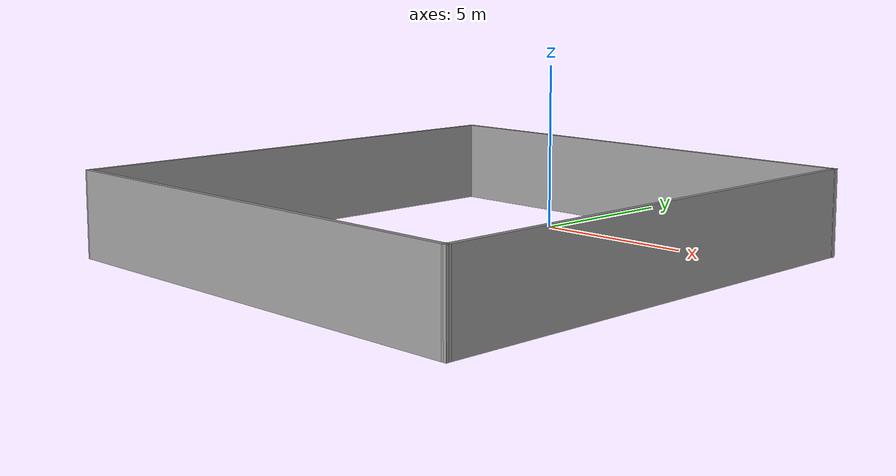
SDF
<?xml version='1.0'?>
<sdf version='1.6'>
  <model name='closed'>
    <pose frame=''>1.47122 -5.19193 0 0 -0 0</pose>
    <link name='Wall_44'>
      <collision name='Wall_44_Collision'>
        <geometry>
          <box>
            <size>15.1124 0.15 2.5</size>
          </box>
        </geometry>
        <pose frame=''>0 0 1.25 0 -0 0</pose>
      </collision>
      <visual name='Wall_44_Visual'>
        <pose frame=''>0 0 1.25 0 -0 0</pose>
        <geometry>
          <box>
            <size>15.1124 0.15 2.5</size>
          </box>
        </geometry>
        <material>
          <script>
            <uri>file://media/materials/scripts/gazebo.material</uri>
            <name>Gazebo/Grey</name>
          </script>
          <ambient>0 0 0 1</ambient>
        </material>
        <meta>
          <layer>0</layer>
        </meta>
      </visual>
      <pose frame=''>7.175 0 0 0 -0 -1.55379</pose>
    </link>
    <link name='Wall_45'>
      <collision name='Wall_45_Collision'>
        <geometry>
          <box>
            <size>14.5 0.15 2.5</size>
          </box>
        </geometry>
        <pose frame=''>0 0 1.25 0 -0 0</pose>
      </collision>
      <visual name='Wall_45_Visual'>
        <pose frame=''>0 0 1.25 0 -0 0</pose>
        <geometry>
          <box>
            <size>14.5 0.15 2.5</size>
          </box>
        </geometry>
        <material>
          <script>
            <uri>file://media/materials/scripts/gazebo.material</uri>
            <name>Gazebo/Grey</name>
          </script>
          <ambient>0 0 0 1</ambient>
        </material>
        <meta>
          <layer>0</layer>
        </meta>
      </visual>
      <pose frame=''>0.127219 -7.48046 0 0 -0 3.14159</pose>
    </link>
    <link name='Wall_46'>
      <collision name='Wall_46_Collision'>
        <geometry>
          <box>
            <size>15.1124 0.15 2.5</size>
          </box>
        </geometry>
        <pose frame=''>0 0 1.25 0 -0 0</pose>
      </collision>
      <visual name='Wall_46_Visual'>
        <pose frame=''>0 0 1.25 0 -0 0</pose>
        <geometry>
          <box>
            <size>15.1124 0.15 2.5</size>
          </box>
        </geometry>
        <material>
          <script>
            <uri>file://media/materials/scripts/gazebo.material</uri>
            <name>Gazebo/Grey</name>
          </script>
          <ambient>0 0 0 1</ambient>
        </material>
        <meta>
          <layer>0</layer>
        </meta>
      </visual>
      <pose frame=''>-7.175 0 0 0 -0 1.5878</pose>
    </link>
    <link name='Wall_47'>
      <collision name='Wall_47_Collision'>
        <geometry>
          <box>
            <size>14.5 0.15 2.5</size>
          </box>
        </geometry>
        <pose frame=''>0 0 1.25 0 -0 0</pose>
      </collision>
      <visual name='Wall_47_Visual'>
        <pose frame=''>0 0 1.25 0 -0 0</pose>
        <geometry>
          <box>
            <size>14.5 0.15 2.5</size>
          </box>
        </geometry>
        <material>
          <script>
            <uri>file://media/materials/scripts/gazebo.material</uri>
            <name>Gazebo/Grey</name>
          </script>
          <ambient>0 0 0 1</ambient>
        </material>
        <meta>
          <layer>0</layer>
        </meta>
      </visual>
      <pose frame=''>-0.104087 7.48046 0 0 -0 0</pose>
    </link>
    <static>1</static>
  </model>
</sdf>
